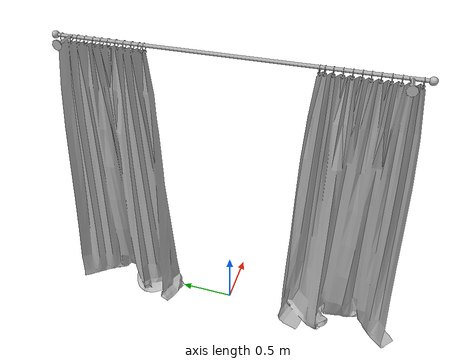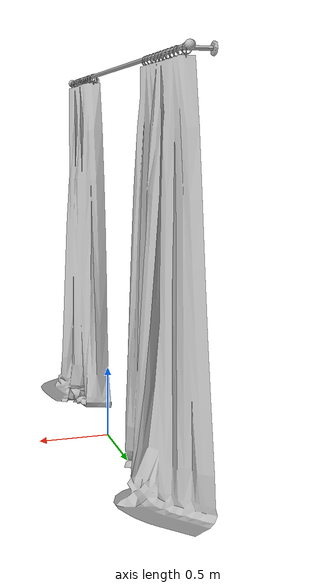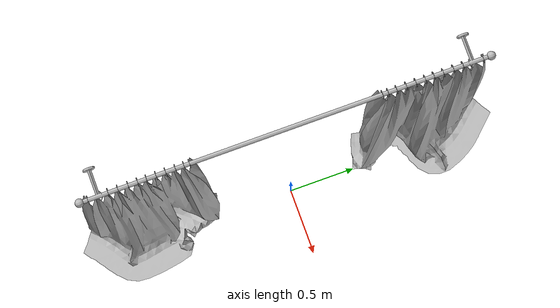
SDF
<?xml version='1.0'?>
<sdf version='1.4'>
  <model name='s__1895'>
    <pose>0 0 0 0 0 0</pose>
    <static>true</static>
    <link name='link'>
      <collision name='collision'>
        <pose>0 0 0 0 0 0</pose>
        <geometry>
          <box>
            <size>0.52 3.2603 2</size>
          </box>
        </geometry>
      </collision>
      <visual name='visual'>
        <pose>0 0 0 0 0 0</pose>
        <geometry>
          <mesh><uri>model://s__1895/s__1895.dae</uri></mesh>
        </geometry>
      </visual>
    </link>
  </model>
</sdf>
